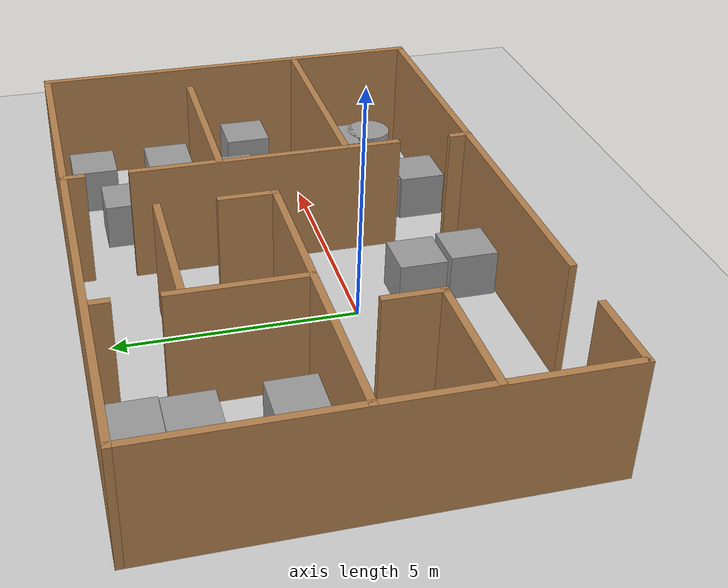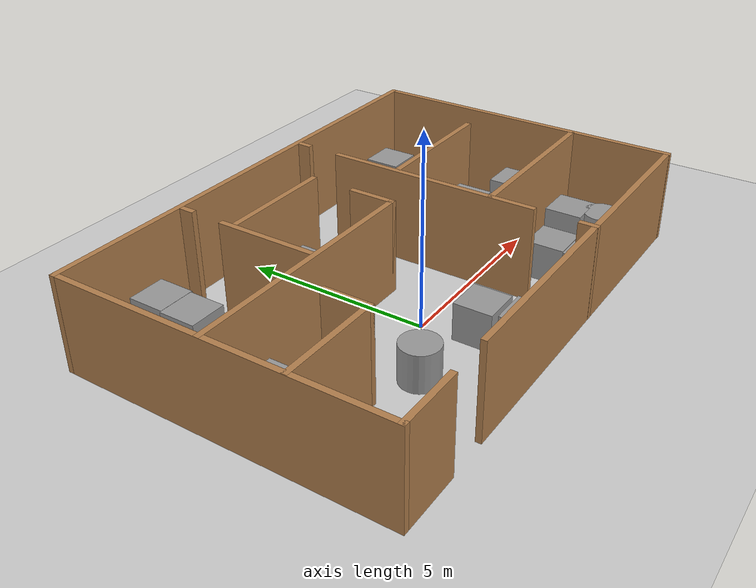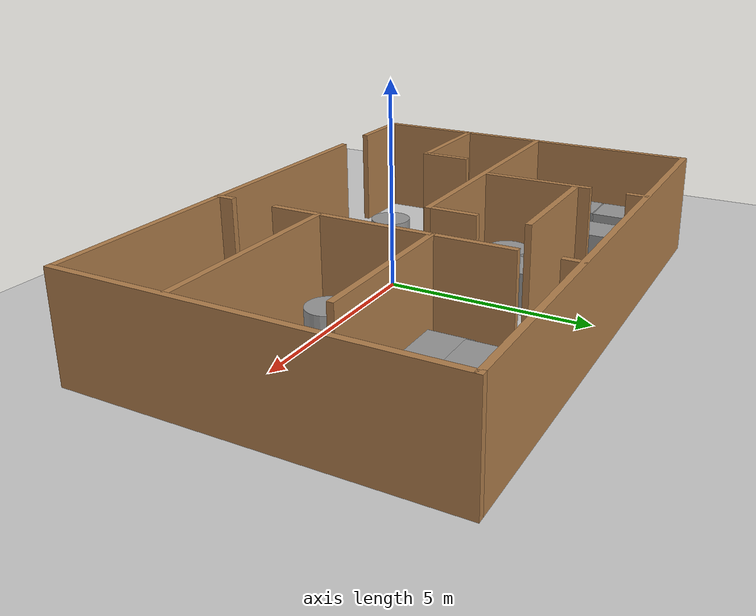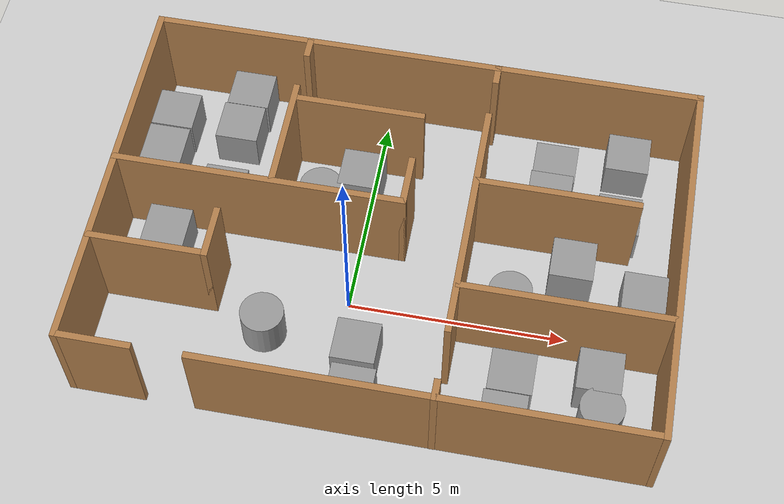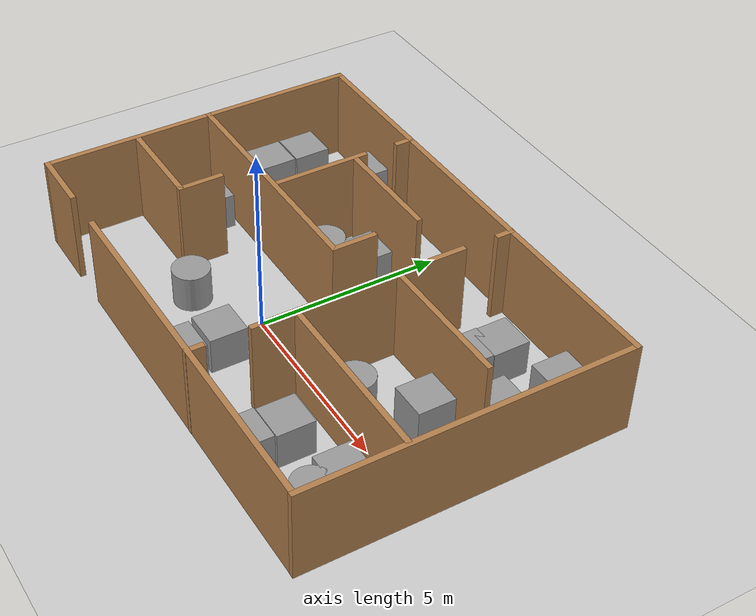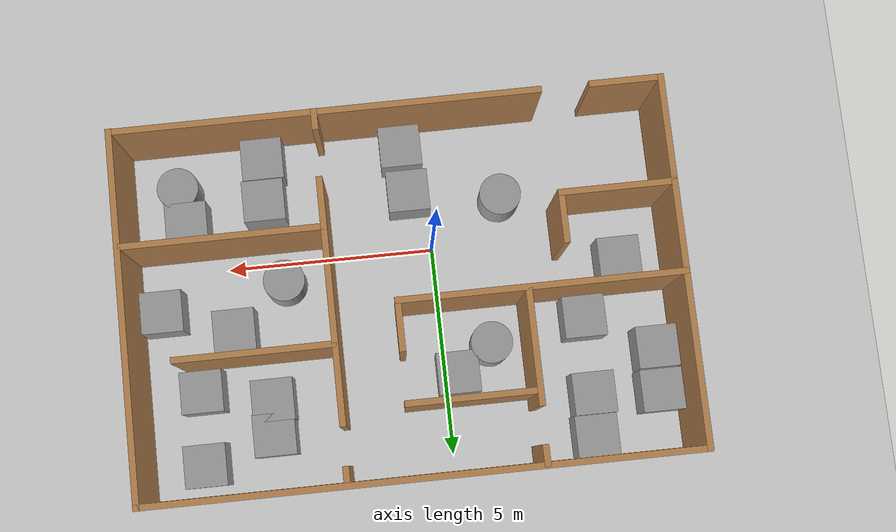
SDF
<sdf version="1.7">
 <world name="default">
  <light name="sun" type="directional">
   <pose>0 0 10 0 -0 0</pose>
   <diffuse>0.8 0.8 0.8 1</diffuse>
   <specular>0.2 0.2 0.2 1</specular>
   <attenuation>
    <range>1000</range>
    <constant>0.9</constant>
    <linear>0.01</linear>
    <quadratic>0.001</quadratic>
   </attenuation>
   <direction>-0.5 0.1 -0.9</direction>
   <spot><inner_angle>0</inner_angle><outer_angle>0</outer_angle><falloff>0</falloff></spot>
  </light>
  <model name="ground_plane">
   <static>1</static>
   <link name="link">
    <collision name="collision">
     <geometry><plane><normal>0 0 1</normal><size>100 100</size></plane></geometry>
     <surface>
      <contact><collide_bitmask>65535</collide_bitmask></contact>
      <friction><ode><mu>100</mu><mu2>50</mu2></ode></friction>
     </surface>
    </collision>
    <visual name="visual">
     <cast_shadows>0</cast_shadows>
     <geometry><plane><normal>0 0 1</normal><size>100 100</size></plane></geometry>
     <material>
      <script><uri>file://media/materials/scripts/gazebo.material</uri><name>Gazebo/Grey</name></script>
     </material>
    </visual>
   </link>
  </model>
  <gravity>0 0 -9.8</gravity>
  <magnetic_field>6e-06 2.3e-05 -4.2e-05</magnetic_field>
  <atmosphere type="adiabatic"/>
  <physics type="ode">
   <max_step_size>0.001</max_step_size>
   <real_time_factor>1</real_time_factor>
   <real_time_update_rate>1000</real_time_update_rate>
  </physics>
  <scene><ambient>0.4 0.4 0.4 1</ambient><background>0.7 0.7 0.7 1</background><shadows>1</shadows></scene>
  <spherical_coordinates>
   <surface_model>EARTH_WGS84</surface_model>
   <latitude_deg>0</latitude_deg>
   <longitude_deg>0</longitude_deg>
   <elevation>0</elevation>
   <heading_deg>0</heading_deg>
  </spherical_coordinates>
  <model name="house_2nd">
   <pose>0.806324 1.20916 0 0 -0 0</pose>
   <link name="Wall_0">
    <collision name="Wall_0_Collision">
     <geometry><box><size>13 0.15 2.5</size></box></geometry>
     <pose>0 0 1.25 0 -0 0</pose>
    </collision>
    <visual name="Wall_0_Visual">
     <pose>0 0 1.25 0 -0 0</pose>
     <geometry><box><size>13 0.15 2.5</size></box></geometry>
     <material>
      <script><uri>file://media/materials/scripts/gazebo.material</uri><name>Gazebo/Wood</name></script>
      <ambient>1 1 1 1</ambient>
     </material>
     <meta><layer>0</layer></meta>
    </visual>
    <pose>0 4.29333 0 0 -0 3.14159</pose>
   </link>
   <link name="Wall_10">
    <collision name="Wall_10_Collision">
     <geometry><box><size>8.75 0.15 2.5</size></box></geometry>
     <pose>0 0 1.25 0 -0 0</pose>
    </collision>
    <visual name="Wall_10_Visual">
     <pose>0 0 1.25 0 -0 0</pose>
     <geometry><box><size>8.75 0.15 2.5</size></box></geometry>
     <material>
      <script><uri>file://media/materials/scripts/gazebo.material</uri><name>Gazebo/Wood</name></script>
      <ambient>1 1 1 1</ambient>
     </material>
     <meta><layer>0</layer></meta>
    </visual>
    <pose>6.425 -0.006665 0 0 -0 -1.5708</pose>
   </link>
   <link name="Wall_12">
    <collision name="Wall_12_Collision">
     <geometry><box><size>5.75 0.15 2.5</size></box></geometry>
     <pose>0 0 1.25 0 -0 0</pose>
    </collision>
    <visual name="Wall_12_Visual">
     <pose>0 0 1.25 0 -0 0</pose>
     <geometry><box><size>5.75 0.15 2.5</size></box></geometry>
     <material>
      <script><uri>file://media/materials/scripts/gazebo.material</uri><name>Gazebo/Wood</name></script>
      <ambient>1 1 1 1</ambient>
     </material>
     <meta><layer>0</layer></meta>
    </visual>
    <pose>1.68603 0.102362 0 0 -0 -1.5708</pose>
   </link>
   <link name="Wall_14">
    <collision name="Wall_14_Collision">
     <geometry><box><size>6.75 0.15 2.5</size></box></geometry>
     <pose>0 0 1.25 0 -0 0</pose>
    </collision>
    <visual name="Wall_14_Visual">
     <pose>0 0 1.25 0 -0 0</pose>
     <geometry><box><size>6.75 0.15 2.5</size></box></geometry>
     <material>
      <script><uri>file://media/materials/scripts/gazebo.material</uri><name>Gazebo/Wood</name></script>
      <ambient>1 1 1 1</ambient>
     </material>
     <meta><layer>0</layer></meta>
    </visual>
    <pose>-3.12038 0.266324 0 0 -0 0</pose>
   </link>
   <link name="Wall_16">
    <collision name="Wall_16_Collision">
     <geometry><box><size>3 0.15 2.5</size></box></geometry>
     <pose>0 0 1.25 0 -0 0</pose>
    </collision>
    <visual name="Wall_16_Visual">
     <pose>0 0 1.25 0 -0 0</pose>
     <geometry><box><size>3 0.15 2.5</size></box></geometry>
     <material>
      <script><uri>file://media/materials/scripts/gazebo.material</uri><name>Gazebo/Wood</name></script>
      <ambient>1 1 1 1</ambient>
     </material>
     <meta><layer>0</layer></meta>
    </visual>
    <pose>-1.23715 2.61632 0 0 -0 0</pose>
   </link>
   <link name="Wall_18">
    <collision name="Wall_18_Collision">
     <geometry><box><size>2.75 0.15 2.5</size></box></geometry>
     <pose>0 0 1.25 0 -0 0</pose>
    </collision>
    <visual name="Wall_18_Visual">
     <pose>0 0 1.25 0 -0 0</pose>
     <geometry><box><size>2.75 0.15 2.5</size></box></geometry>
     <material>
      <script><uri>file://media/materials/scripts/gazebo.material</uri><name>Gazebo/Wood</name></script>
      <ambient>1 1 1 1</ambient>
     </material>
     <meta><layer>0</layer></meta>
    </visual>
    <pose>-2.81073 1.59691 0 0 -0 1.5708</pose>
   </link>
   <link name="Wall_20">
    <collision name="Wall_20_Collision">
     <geometry><box><size>1.25 0.15 2.5</size></box></geometry>
     <pose>0 0 1.25 0 -0 0</pose>
    </collision>
    <visual name="Wall_20_Visual">
     <pose>0 0 1.25 0 -0 0</pose>
     <geometry><box><size>1.25 0.15 2.5</size></box></geometry>
     <material>
      <script><uri>file://media/materials/scripts/gazebo.material</uri><name>Gazebo/Wood</name></script>
      <ambient>1 1 1 1</ambient>
     </material>
     <meta><layer>0</layer></meta>
    </visual>
    <pose>0.179618 0.816324 0 0 -0 1.5708</pose>
   </link>
   <link name="Wall_24">
    <collision name="Wall_24_Collision">
     <geometry><box><size>0.5 0.15 2.5</size></box></geometry>
     <pose>0 0 1.25 0 -0 0</pose>
    </collision>
    <visual name="Wall_24_Visual">
     <pose>0 0 1.25 0 -0 0</pose>
     <geometry><box><size>0.5 0.15 2.5</size></box></geometry>
     <material>
      <script><uri>file://media/materials/scripts/gazebo.material</uri><name>Gazebo/Wood</name></script>
      <ambient>1 1 1 1</ambient>
     </material>
     <meta><layer>0</layer></meta>
    </visual>
    <pose>-2.77552 4.07837 0 0 -0 -1.5708</pose>
   </link>
   <link name="Wall_26">
    <collision name="Wall_26_Collision">
     <geometry><box><size>0.5 0.15 2.5</size></box></geometry>
     <pose>0 0 1.25 0 -0 0</pose>
    </collision>
    <visual name="Wall_26_Visual">
     <pose>0 0 1.25 0 -0 0</pose>
     <geometry><box><size>0.5 0.15 2.5</size></box></geometry>
     <material>
      <script><uri>file://media/materials/scripts/gazebo.material</uri><name>Gazebo/Wood</name></script>
      <ambient>1 1 1 1</ambient>
     </material>
     <meta><layer>0</layer></meta>
    </visual>
    <pose>1.71182 4.1015 0 0 -0 -1.5708</pose>
   </link>
   <link name="Wall_28">
    <collision name="Wall_28_Collision">
     <geometry><box><size>2.75 0.15 2.5</size></box></geometry>
     <pose>0 0 1.25 0 -0 0</pose>
    </collision>
    <visual name="Wall_28_Visual">
     <pose>0 0 1.25 0 -0 0</pose>
     <geometry><box><size>2.75 0.15 2.5</size></box></geometry>
     <material>
      <script><uri>file://media/materials/scripts/gazebo.material</uri><name>Gazebo/Wood</name></script>
      <ambient>1 1 1 1</ambient>
     </material>
     <meta><layer>0</layer></meta>
    </visual>
    <pose>-5.10703 -1.82998 0 0 -0 0</pose>
   </link>
   <link name="Wall_29">
    <collision name="Wall_29_Collision">
     <geometry><box><size>1.25 0.15 2.5</size></box></geometry>
     <pose>0 0 1.25 0 -0 0</pose>
    </collision>
    <visual name="Wall_29_Visual">
     <pose>0 0 1.25 0 -0 0</pose>
     <geometry><box><size>1.25 0.15 2.5</size></box></geometry>
     <material>
      <script><uri>file://media/materials/scripts/gazebo.material</uri><name>Gazebo/Wood</name></script>
      <ambient>1 1 1 1</ambient>
     </material>
     <meta><layer>0</layer></meta>
    </visual>
    <pose>-3.80702 -1.27998 0 0 -0 1.5708</pose>
   </link>
   <link name="Wall_3">
    <collision name="Wall_3_Collision">
     <geometry><box><size>8.75 0.15 2.5</size></box></geometry>
     <pose>0 0 1.25 0 -0 0</pose>
    </collision>
    <visual name="Wall_3_Visual">
     <pose>0 0 1.25 0 -0 0</pose>
     <geometry><box><size>8.75 0.15 2.5</size></box></geometry>
     <material>
      <script><uri>file://media/materials/scripts/gazebo.material</uri><name>Gazebo/Wood</name></script>
      <ambient>1 1 1 1</ambient>
     </material>
     <meta><layer>0</layer></meta>
    </visual>
    <pose>-6.425 -0.006665 0 0 -0 -1.5708</pose>
   </link>
   <link name="Wall_32">
    <collision name="Wall_32_Collision">
     <geometry><box><size>0.5 0.15 2.5</size></box></geometry>
     <pose>0 0 1.25 0 -0 0</pose>
    </collision>
    <visual name="Wall_32_Visual">
     <pose>0 0 1.25 0 -0 0</pose>
     <geometry><box><size>0.5 0.15 2.5</size></box></geometry>
     <material>
      <script><uri>file://media/materials/scripts/gazebo.material</uri><name>Gazebo/Wood</name></script>
      <ambient>1 1 1 1</ambient>
     </material>
     <meta><layer>0</layer></meta>
    </visual>
    <pose>1.66556 -4.12996 0 0 -0 1.5708</pose>
   </link>
   <link name="Wall_34">
    <collision name="Wall_34_Collision">
     <geometry><box><size>4.75 0.15 2.5</size></box></geometry>
     <pose>0 0 1.25 0 -0 0</pose>
    </collision>
    <visual name="Wall_34_Visual">
     <pose>0 0 1.25 0 -0 0</pose>
     <geometry><box><size>4.75 0.15 2.5</size></box></geometry>
     <material>
      <script><uri>file://media/materials/scripts/gazebo.material</uri><name>Gazebo/Wood</name></script>
      <ambient>1 1 1 1</ambient>
     </material>
     <meta><layer>0</layer></meta>
    </visual>
    <pose>4.03495 -1.59868 0 0 -0 0</pose>
   </link>
   <link name="Wall_36">
    <collision name="Wall_36_Collision">
     <geometry><box><size>3.75 0.15 2.5</size></box></geometry>
     <pose>0 0 1.25 0 -0 0</pose>
    </collision>
    <visual name="Wall_36_Visual">
     <pose>0 0 1.25 0 -0 0</pose>
     <geometry><box><size>3.75 0.15 2.5</size></box></geometry>
     <material>
      <script><uri>file://media/materials/scripts/gazebo.material</uri><name>Gazebo/Wood</name></script>
      <ambient>1 1 1 1</ambient>
     </material>
     <meta><layer>0</layer></meta>
    </visual>
    <pose>3.53495 1.1076 0 0 -0 0</pose>
   </link>
   <link name="Wall_5">
    <collision name="Wall_5_Collision">
     <geometry><box><size>1.75 0.15 2.5</size></box></geometry>
     <pose>0 0 1.25 0 -0 0</pose>
    </collision>
    <visual name="Wall_5_Visual">
     <pose>0 0 1.25 0 -0 0</pose>
     <geometry><box><size>1.75 0.15 2.5</size></box></geometry>
     <material>
      <script><uri>file://media/materials/scripts/gazebo.material</uri><name>Gazebo/Wood</name></script>
      <ambient>1 1 1 1</ambient>
     </material>
     <meta><layer>0</layer></meta>
    </visual>
    <pose>-5.625 -4.30666 0 0 -0 0</pose>
   </link>
   <link name="Wall_7">
    <collision name="Wall_7_Collision">
     <geometry><box><size>10 0.15 2.5</size></box></geometry>
     <pose>0 0 1.25 0 -0 0</pose>
    </collision>
    <visual name="Wall_7_Visual">
     <pose>0 0 1.25 0 -0 0</pose>
     <geometry><box><size>10 0.15 2.5</size></box></geometry>
     <material>
      <script><uri>file://media/materials/scripts/gazebo.material</uri><name>Gazebo/Wood</name></script>
      <ambient>1 1 1 1</ambient>
     </material>
     <meta><layer>0</layer></meta>
    </visual>
    <pose>1.35844 -4.29988 0 0 -0 0</pose>
   </link>
   <static>1</static>
  </model>
  <model name="unit_box">
   <pose>0.538826 -2.46605 0.5 0 -0 0</pose>
   <link name="link">
    <inertial>
     <mass>1</mass>
     <inertia>
      <ixx>0.166667</ixx>
      <ixy>0</ixy>
      <ixz>0</ixz>
      <iyy>0.166667</iyy>
      <iyz>0</iyz>
      <izz>0.166667</izz>
     </inertia>
    </inertial>
    <collision name="collision"><geometry><box><size>1 1 1</size></box></geometry></collision>
    <visual name="visual">
     <geometry><box><size>1 1 1</size></box></geometry>
     <material>
      <script><name>Gazebo/Grey</name><uri>file://media/materials/scripts/gazebo.material</uri></script>
     </material>
    </visual>
   </link>
  </model>
  <model name="unit_box_0">
   <pose>0.457915 -1.35571 0.5 0 -0 0</pose>
   <link name="link">
    <inertial>
     <mass>1</mass>
     <inertia>
      <ixx>0.166667</ixx>
      <ixy>0</ixy>
      <ixz>0</ixz>
      <iyy>0.166667</iyy>
      <iyz>0</iyz>
      <izz>0.166667</izz>
     </inertia>
    </inertial>
    <collision name="collision"><geometry><box><size>1 1 1</size></box></geometry></collision>
    <visual name="visual">
     <geometry><box><size>1 1 1</size></box></geometry>
     <material>
      <script><name>Gazebo/Grey</name><uri>file://media/materials/scripts/gazebo.material</uri></script>
     </material>
    </visual>
   </link>
  </model>
  <model name="unit_cylinder">
   <pose>-1.74531 -1.0396 0.5 0 -0 0</pose>
   <link name="link">
    <inertial>
     <mass>1</mass>
     <inertia><ixx>0.145833</ixx><ixy>0</ixy><ixz>0</ixz><iyy>0.145833</iyy><iyz>0</iyz><izz>0.125</izz></inertia>
    </inertial>
    <collision name="collision">
     <geometry><cylinder><radius>0.5</radius><length>1</length></cylinder></geometry>
    </collision>
    <visual name="visual">
     <geometry><cylinder><radius>0.5</radius><length>1</length></cylinder></geometry>
     <material>
      <script><name>Gazebo/Grey</name><uri>file://media/materials/scripts/gazebo.material</uri></script>
     </material>
    </visual>
   </link>
  </model>
  <model name="unit_box_1">
   <pose>-4.41539 0.780059 0.5 0 -0 0</pose>
   <link name="link">
    <inertial>
     <mass>1</mass>
     <inertia>
      <ixx>0.166667</ixx>
      <ixy>0</ixy>
      <ixz>0</ixz>
      <iyy>0.166667</iyy>
      <iyz>0</iyz>
      <izz>0.166667</izz>
     </inertia>
    </inertial>
    <collision name="collision"><geometry><box><size>1 1 1</size></box></geometry></collision>
    <visual name="visual">
     <geometry><box><size>1 1 1</size></box></geometry>
     <material>
      <script><name>Gazebo/Grey</name><uri>file://media/materials/scripts/gazebo.material</uri></script>
     </material>
    </visual>
   </link>
  </model>
  <model name="unit_box_2">
   <pose>3.89558 -2.48818 0.5 0 -0 0</pose>
   <link name="link">
    <inertial>
     <mass>1</mass>
     <inertia>
      <ixx>0.166667</ixx>
      <ixy>0</ixy>
      <ixz>0</ixz>
      <iyy>0.166667</iyy>
      <iyz>0</iyz>
      <izz>0.166667</izz>
     </inertia>
    </inertial>
    <collision name="collision"><geometry><box><size>1 1 1</size></box></geometry></collision>
    <visual name="visual">
     <geometry><box><size>1 1 1</size></box></geometry>
     <material>
      <script><name>Gazebo/Grey</name><uri>file://media/materials/scripts/gazebo.material</uri></script>
     </material>
    </visual>
   </link>
  </model>
  <model name="unit_box_3">
   <pose>3.94512 -1.47374 0.5 0 -0 0</pose>
   <link name="link">
    <inertial>
     <mass>1</mass>
     <inertia>
      <ixx>0.166667</ixx>
      <ixy>0</ixy>
      <ixz>0</ixz>
      <iyy>0.166667</iyy>
      <iyz>0</iyz>
      <izz>0.166667</izz>
     </inertia>
    </inertial>
    <collision name="collision"><geometry><box><size>1 1 1</size></box></geometry></collision>
    <visual name="visual">
     <geometry><box><size>1 1 1</size></box></geometry>
     <material>
      <script><name>Gazebo/Grey</name><uri>file://media/materials/scripts/gazebo.material</uri></script>
     </material>
    </visual>
   </link>
  </model>
  <model name="unit_box_4">
   <pose>5.8404 -1.10462 0.5 0 -0 0</pose>
   <link name="link">
    <inertial>
     <mass>1</mass>
     <inertia>
      <ixx>0.166667</ixx>
      <ixy>0</ixy>
      <ixz>0</ixz>
      <iyy>0.166667</iyy>
      <iyz>0</iyz>
      <izz>0.166667</izz>
     </inertia>
    </inertial>
    <collision name="collision"><geometry><box><size>1 1 1</size></box></geometry></collision>
    <visual name="visual">
     <geometry><box><size>1 1 1</size></box></geometry>
     <material>
      <script><name>Gazebo/Grey</name><uri>file://media/materials/scripts/gazebo.material</uri></script>
     </material>
    </visual>
   </link>
  </model>
  <model name="unit_cylinder_0">
   <pose>5.97379 -1.96782 0.5 0 -0 0</pose>
   <link name="link">
    <inertial>
     <mass>1</mass>
     <inertia><ixx>0.145833</ixx><ixy>0</ixy><ixz>0</ixz><iyy>0.145833</iyy><iyz>0</iyz><izz>0.125</izz></inertia>
    </inertial>
    <collision name="collision">
     <geometry><cylinder><radius>0.5</radius><length>1</length></cylinder></geometry>
    </collision>
    <visual name="visual">
     <geometry><cylinder><radius>0.5</radius><length>1</length></cylinder></geometry>
     <material>
      <script><name>Gazebo/Grey</name><uri>file://media/materials/scripts/gazebo.material</uri></script>
     </material>
    </visual>
   </link>
  </model>
  <model name="unit_box_5">
   <pose>-0.289674 3.12969 0.5 0 -0 0</pose>
   <link name="link">
    <inertial>
     <mass>1</mass>
     <inertia>
      <ixx>0.166667</ixx>
      <ixy>0</ixy>
      <ixz>0</ixz>
      <iyy>0.166667</iyy>
      <iyz>0</iyz>
      <izz>0.166667</izz>
     </inertia>
    </inertial>
    <collision name="collision"><geometry><box><size>1 1 1</size></box></geometry></collision>
    <visual name="visual">
     <geometry><box><size>1 1 1</size></box></geometry>
     <material>
      <script><name>Gazebo/Grey</name><uri>file://media/materials/scripts/gazebo.material</uri></script>
     </material>
    </visual>
   </link>
  </model>
  <model name="unit_cylinder_1">
   <pose>-1.14958 2.50475 0.5 0 -0 0</pose>
   <link name="link">
    <inertial>
     <mass>1</mass>
     <inertia><ixx>0.145833</ixx><ixy>0</ixy><ixz>0</ixz><iyy>0.145833</iyy><iyz>0</iyz><izz>0.125</izz></inertia>
    </inertial>
    <collision name="collision">
     <geometry><cylinder><radius>0.5</radius><length>1</length></cylinder></geometry>
    </collision>
    <visual name="visual">
     <geometry><cylinder><radius>0.5</radius><length>1</length></cylinder></geometry>
     <material>
      <script><name>Gazebo/Grey</name><uri>file://media/materials/scripts/gazebo.material</uri></script>
     </material>
    </visual>
   </link>
  </model>
  <model name="unit_box_6">
   <pose>-3.37892 4.94635 0.5 0 -0 0</pose>
   <link name="link">
    <inertial>
     <mass>1</mass>
     <inertia>
      <ixx>0.166667</ixx>
      <ixy>0</ixy>
      <ixz>0</ixz>
      <iyy>0.166667</iyy>
      <iyz>0</iyz>
      <izz>0.166667</izz>
     </inertia>
    </inertial>
    <collision name="collision"><geometry><box><size>1 1 1</size></box></geometry></collision>
    <visual name="visual">
     <geometry><box><size>1 1 1</size></box></geometry>
     <material>
      <script><name>Gazebo/Grey</name><uri>file://media/materials/scripts/gazebo.material</uri></script>
     </material>
    </visual>
   </link>
  </model>
  <model name="unit_box_7">
   <pose>-3.42618 3.93979 0.5 0 -0 0</pose>
   <link name="link">
    <inertial>
     <mass>1</mass>
     <inertia>
      <ixx>0.166667</ixx>
      <ixy>0</ixy>
      <ixz>0</ixz>
      <iyy>0.166667</iyy>
      <iyz>0</iyz>
      <izz>0.166667</izz>
     </inertia>
    </inertial>
    <collision name="collision"><geometry><box><size>1 1 1</size></box></geometry></collision>
    <visual name="visual">
     <geometry><box><size>1 1 1</size></box></geometry>
     <material>
      <script><name>Gazebo/Grey</name><uri>file://media/materials/scripts/gazebo.material</uri></script>
     </material>
    </visual>
   </link>
  </model>
  <model name="unit_box_8">
   <pose>-3.40948 2.10402 0.5 0 -0 0</pose>
   <link name="link">
    <inertial>
     <mass>1</mass>
     <inertia>
      <ixx>0.166667</ixx>
      <ixy>0</ixy>
      <ixz>0</ixz>
      <iyy>0.166667</iyy>
      <iyz>0</iyz>
      <izz>0.166667</izz>
     </inertia>
    </inertial>
    <collision name="collision"><geometry><box><size>1 1 1</size></box></geometry></collision>
    <visual name="visual">
     <geometry><box><size>1 1 1</size></box></geometry>
     <material>
      <script><name>Gazebo/Grey</name><uri>file://media/materials/scripts/gazebo.material</uri></script>
     </material>
    </visual>
   </link>
  </model>
  <model name="unit_box_9">
   <pose>-5.06176 2.99642 0.5 0 -0 0</pose>
   <link name="link">
    <inertial>
     <mass>1</mass>
     <inertia>
      <ixx>0.166667</ixx>
      <ixy>0</ixy>
      <ixz>0</ixz>
      <iyy>0.166667</iyy>
      <iyz>0</iyz>
      <izz>0.166667</izz>
     </inertia>
    </inertial>
    <collision name="collision"><geometry><box><size>1 1 1</size></box></geometry></collision>
    <visual name="visual">
     <geometry><box><size>1 1 1</size></box></geometry>
     <material>
      <script><name>Gazebo/Grey</name><uri>file://media/materials/scripts/gazebo.material</uri></script>
     </material>
    </visual>
   </link>
  </model>
  <model name="unit_box_10">
   <pose>-5.03641 4.02678 0.5 0 -0 0</pose>
   <link name="link">
    <inertial>
     <mass>1</mass>
     <inertia>
      <ixx>0.166667</ixx>
      <ixy>0</ixy>
      <ixz>0</ixz>
      <iyy>0.166667</iyy>
      <iyz>0</iyz>
      <izz>0.166667</izz>
     </inertia>
    </inertial>
    <collision name="collision"><geometry><box><size>1 1 1</size></box></geometry></collision>
    <visual name="visual">
     <geometry><box><size>1 1 1</size></box></geometry>
     <material>
      <script><name>Gazebo/Grey</name><uri>file://media/materials/scripts/gazebo.material</uri></script>
     </material>
    </visual>
   </link>
  </model>
  <model name="unit_box_11">
   <pose>4.17501 4.14449 0.5 0 -0 0</pose>
   <link name="link">
    <inertial>
     <mass>1</mass>
     <inertia>
      <ixx>0.166667</ixx>
      <ixy>0</ixy>
      <ixz>0</ixz>
      <iyy>0.166667</iyy>
      <iyz>0</iyz>
      <izz>0.166667</izz>
     </inertia>
    </inertial>
    <collision name="collision"><geometry><box><size>1 1 1</size></box></geometry></collision>
    <visual name="visual">
     <geometry><box><size>1 1 1</size></box></geometry>
     <material>
      <script><name>Gazebo/Grey</name><uri>file://media/materials/scripts/gazebo.material</uri></script>
     </material>
    </visual>
   </link>
  </model>
  <model name="unit_box_12">
   <pose>4.1478 3.32662 0.5 0 -0 0</pose>
   <link name="link">
    <inertial>
     <mass>1</mass>
     <inertia>
      <ixx>0.166667</ixx>
      <ixy>0</ixy>
      <ixz>0</ixz>
      <iyy>0.166667</iyy>
      <iyz>0</iyz>
      <izz>0.166667</izz>
     </inertia>
    </inertial>
    <collision name="collision"><geometry><box><size>1 1 1</size></box></geometry></collision>
    <visual name="visual">
     <geometry><box><size>1 1 1</size></box></geometry>
     <material>
      <script><name>Gazebo/Grey</name><uri>file://media/materials/scripts/gazebo.material</uri></script>
     </material>
    </visual>
   </link>
  </model>
  <model name="unit_box_13">
   <pose>5.803 2.96877 0.5 0 -0 0</pose>
   <link name="link">
    <inertial>
     <mass>1</mass>
     <inertia>
      <ixx>0.166667</ixx>
      <ixy>0</ixy>
      <ixz>0</ixz>
      <iyy>0.166667</iyy>
      <iyz>0</iyz>
      <izz>0.166667</izz>
     </inertia>
    </inertial>
    <collision name="collision"><geometry><box><size>1 1 1</size></box></geometry></collision>
    <visual name="visual">
     <geometry><box><size>1 1 1</size></box></geometry>
     <material>
      <script><name>Gazebo/Grey</name><uri>file://media/materials/scripts/gazebo.material</uri></script>
     </material>
    </visual>
   </link>
  </model>
  <model name="unit_box_14">
   <pose>5.85243 4.70297 0.5 0 -0 0</pose>
   <link name="link">
    <inertial>
     <mass>1</mass>
     <inertia>
      <ixx>0.166667</ixx>
      <ixy>0</ixy>
      <ixz>0</ixz>
      <iyy>0.166667</iyy>
      <iyz>0</iyz>
      <izz>0.166667</izz>
     </inertia>
    </inertial>
    <collision name="collision"><geometry><box><size>1 1 1</size></box></geometry></collision>
    <visual name="visual">
     <geometry><box><size>1 1 1</size></box></geometry>
     <material>
      <script><name>Gazebo/Grey</name><uri>file://media/materials/scripts/gazebo.material</uri></script>
     </material>
    </visual>
   </link>
  </model>
  <model name="unit_box_15">
   <pose>4.91529 1.58571 0.5 0 -0 0</pose>
   <link name="link">
    <inertial>
     <mass>1</mass>
     <inertia>
      <ixx>0.166667</ixx>
      <ixy>0</ixy>
      <ixz>0</ixz>
      <iyy>0.166667</iyy>
      <iyz>0</iyz>
      <izz>0.166667</izz>
     </inertia>
    </inertial>
    <collision name="collision"><geometry><box><size>1 1 1</size></box></geometry></collision>
    <visual name="visual">
     <geometry><box><size>1 1 1</size></box></geometry>
     <material>
      <script><name>Gazebo/Grey</name><uri>file://media/materials/scripts/gazebo.material</uri></script>
     </material>
    </visual>
   </link>
  </model>
  <model name="unit_box_16">
   <pose>6.60131 0.981578 0.5 0 -0 0</pose>
   <link name="link">
    <inertial>
     <mass>1</mass>
     <inertia>
      <ixx>0.166667</ixx>
      <ixy>0</ixy>
      <ixz>0</ixz>
      <iyy>0.166667</iyy>
      <iyz>0</iyz>
      <izz>0.166667</izz>
     </inertia>
    </inertial>
    <collision name="collision"><geometry><box><size>1 1 1</size></box></geometry></collision>
    <visual name="visual">
     <geometry><box><size>1 1 1</size></box></geometry>
     <material>
      <script><name>Gazebo/Grey</name><uri>file://media/materials/scripts/gazebo.material</uri></script>
     </material>
    </visual>
   </link>
  </model>
  <model name="unit_cylinder_2">
   <pose>3.62474 0.522753 0.5 0 -0 0</pose>
   <link name="link">
    <inertial>
     <mass>1</mass>
     <inertia><ixx>0.145833</ixx><ixy>0</ixy><ixz>0</ixz><iyy>0.145833</iyy><iyz>0</iyz><izz>0.125</izz></inertia>
    </inertial>
    <collision name="collision">
     <geometry><cylinder><radius>0.5</radius><length>1</length></cylinder></geometry>
    </collision>
    <visual name="visual">
     <geometry><cylinder><radius>0.5</radius><length>1</length></cylinder></geometry>
     <material>
      <script><name>Gazebo/Grey</name><uri>file://media/materials/scripts/gazebo.material</uri></script>
     </material>
    </visual>
   </link>
  </model>
 </world>
</sdf>
